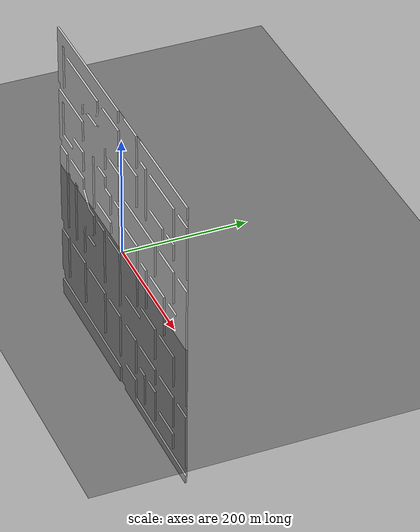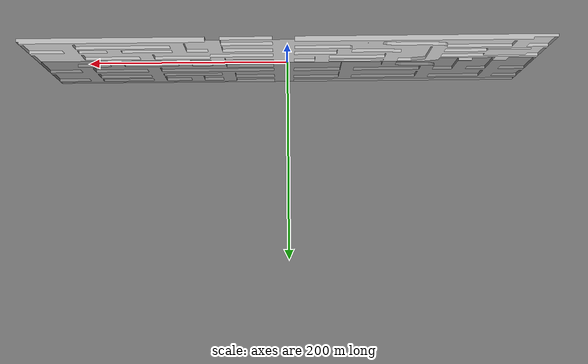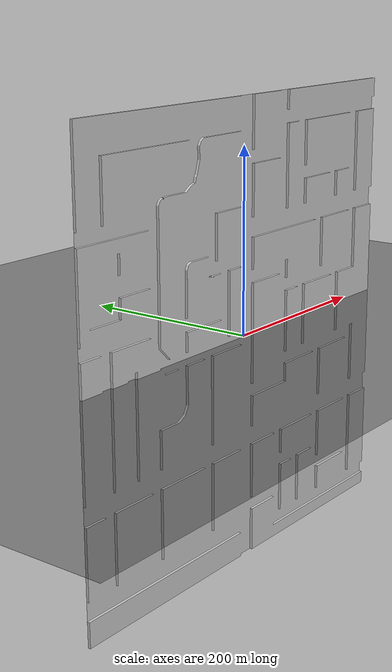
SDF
<?xml version="1.0"?>

<sdf version="1.9">
    <world name="default">
        <plugin filename="gz-sim-physics-system" name="gz::sim::systems::Physics">
        </plugin>
        <plugin filename="gz-sim-scene-broadcaster-system" name="gz::sim::systems::SceneBroadcaster">
        </plugin>
        <plugin filename="gz-sim-user-commands-system" name="gz::sim::systems::UserCommands">
        </plugin>
        <plugin filename="gz-sim-sensors-system" name="gz::sim::systems::Sensors">
            <render_engine>ogre2</render_engine>
        </plugin>

        <scene>
            <background>0.008 0.008 0.012</background>
            <shadows>true</shadows>
            <grid>false</grid>
        </scene>

        <light type="directional" name="sun">
            <cast_shadows>0</cast_shadows>
            <pose>0 0 100 0 0 0</pose>
            <diffuse>1 1 1 1</diffuse>
            <specular>1 1 1 1</specular>
            <direction>0 0 -1</direction>
            <visualize>false</visualize>
        </light>

        <!-- Black Ground Plane -->
        <model name="ground_plane">
            <static>true</static>
            <link name="link">
                <collision name="collision">
                    <geometry>
                        <plane>
                            <normal>0 0 1</normal>
                            <size>500 500</size>
                        </plane>
                    </geometry>
                </collision>
                <visual name="visual">
                    <geometry>
                        <plane>
                            <normal>0 0 1</normal>
                            <size>500 500</size>
                        </plane>
                    </geometry>
                    <material>
                        <ambient>0 0 0 1</ambient>
                        <diffuse>0 0 0 1</diffuse>
                    </material>
                </visual>
            </link>
        </model>
        <!-- My city -->
        <include>
            <pose>0 0 -0.5 0 0 0</pose>
            <uri>model://cityLarge_harmonic</uri>
        </include>
        <!-- My robots -->

    </world>
</sdf>

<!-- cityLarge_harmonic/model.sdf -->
<sdf version="1.9">
    <model name="cityLarge_harmonic">
        <pose>0 0 0 0 0 0</pose>
        <static>true</static>

        <link name="city">
            <pose>0 0 0 0 0 0</pose>

            <collision name="collision">
                <pose>0 0 0 1.5708 0 0</pose>
                <geometry>
                    <mesh>
                        <uri>model://cityLarge_harmonic/meshes/city.dae</uri>
                        <scale>1 1 1</scale>
                    </mesh>
                </geometry>
                <surface>
                    <contact>
                        <collide_without_contact>false</collide_without_contact>
                        <collide_without_contact_bitmask>1</collide_without_contact_bitmask>
                    </contact>
                    <friction>
                        <ode>
                            <mu>1.0</mu>
                            <mu2>1.0</mu2>
                        </ode>
                    </friction>
                </surface>
            </collision>

            <visual name="visual">
                <pose>0 0 0 1.5708 0 0</pose>
                <geometry>
                    <mesh>
                        <uri>model://cityLarge_harmonic/meshes/city.dae</uri>
                        <scale>1 1 1</scale>
                    </mesh>
                </geometry>
                <material>
                    <ambient>0.8 0.8 0.8 1.0</ambient>
                    <diffuse>0.8 0.8 0.8 1.0</diffuse>
                    <specular>0.1 0.1 0.1 1.0</specular>
                </material>
            </visual>

            <inertial>
                <mass>1000.0</mass>
                <inertia>
                    <ixx>1.0</ixx>
                    <ixy>0.0</ixy>
                    <ixz>0.0</ixz>
                    <iyy>1.0</iyy>
                    <iyz>0.0</iyz>
                    <izz>1.0</izz>
                </inertia>
            </inertial>
        </link>
    </model>
</sdf>
